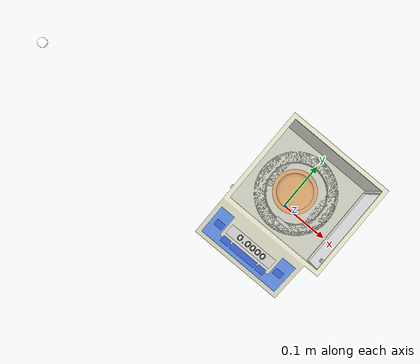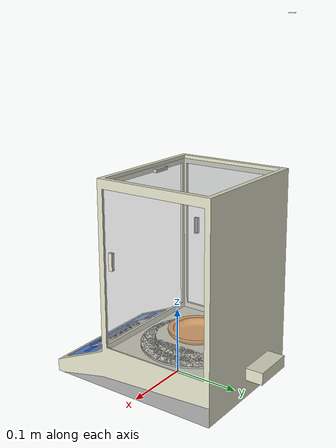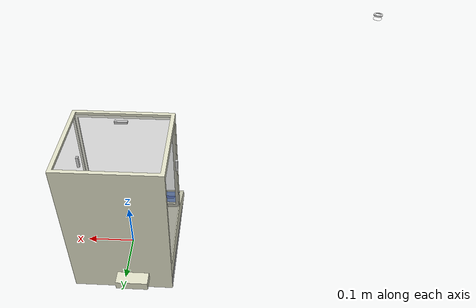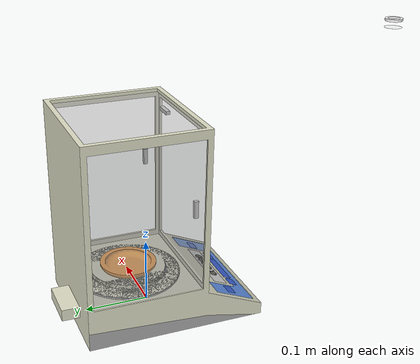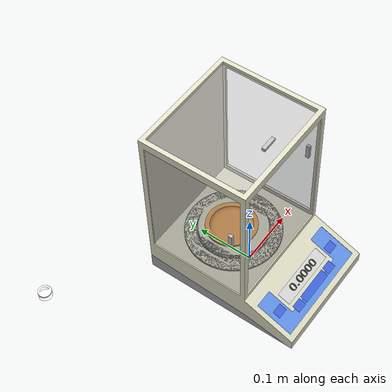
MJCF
<!-- Generated by tools/convert_dae.py from model.dae; size 0.210 x 0.299 x 0.311 m.
     Origin on the floor, centred in X and Y, +Z up. Visual meshes don't collide and carry no mass; one box stands in. -->
<mujoco model="balance">
  <asset>
    <mesh name="balance_00" file="part_00.obj" inertia="shell"/>
    <mesh name="balance_01" file="part_01.obj" inertia="shell"/>
    <mesh name="balance_02" file="part_02.obj" inertia="shell"/>
    <mesh name="balance_03" file="part_03.obj" inertia="shell"/>
    <mesh name="balance_04" file="part_04.obj" inertia="shell"/>
    <mesh name="balance_05" file="part_05.obj" inertia="shell"/>
    <mesh name="balance_06" file="part_06.obj" inertia="shell"/>
    <mesh name="balance_07" file="part_07.obj" inertia="shell"/>
    <mesh name="balance_08" file="part_08.obj" inertia="shell"/>
    <mesh name="balance_09" file="part_09.obj" inertia="shell"/>
    <mesh name="balance_10" file="part_10.obj" inertia="shell"/>
  </asset>
  <worldbody>
    <body name="balance">
      <geom type="mesh" mesh="balance_00" rgba="0.420 0.431 0.482 1.000" contype="0" conaffinity="0" density="0" group="1"/>  <!-- __Metal-floor_ -->
      <geom type="mesh" mesh="balance_01" rgba="0.863 0.863 0.863 1.000" contype="0" conaffinity="0" density="0" group="1"/>  <!-- __Gainsboro_ -->
      <geom type="mesh" mesh="balance_02" rgba="0.392 0.584 0.929 1.000" contype="0" conaffinity="0" density="0" group="1"/>  <!-- __CornflowerBlue_ -->
      <geom type="mesh" mesh="balance_03" rgba="0.255 0.412 0.882 1.000" contype="0" conaffinity="0" density="0" group="1"/>  <!-- __RoyalBlue_ -->
      <geom type="mesh" mesh="balance_04" rgba="0.227 0.227 0.227 1.000" contype="0" conaffinity="0" density="0" group="1"/>  <!-- Color_007 -->
      <geom type="mesh" mesh="balance_05" rgba="0.700 0.700 0.700 0.480" contype="0" conaffinity="0" density="0" group="1"/>  <!-- Translucent_Glass_Tinted -->
      <geom type="mesh" mesh="balance_06" rgba="0.667 0.667 0.667 1.000" contype="0" conaffinity="0" density="0" group="1"/>  <!-- Color_003 -->
      <geom type="mesh" mesh="balance_07" rgba="1.000 0.600 0.196 1.000" contype="0" conaffinity="0" density="0" group="1"/>  <!-- Color_C02 -->
      <geom type="mesh" mesh="balance_08" rgba="0.882 0.882 0.784 1.000" contype="0" conaffinity="0" density="0" group="1"/>  <!-- material -->
      <geom type="mesh" mesh="balance_09" rgba="1.000 1.000 1.000 1.000" contype="0" conaffinity="0" density="0" group="1"/>  <!-- Color_000 -->
      <geom type="mesh" mesh="balance_10" rgba="0.757 0.757 0.757 1.000" contype="0" conaffinity="0" density="0" group="1"/>  <!-- __CorrogateShiny_ -->
      <geom name="balance_collision" type="box" size="0.1050 0.1497 0.1555" pos="0 0 0.1555" mass="6" group="3" rgba=".5 .5 .5 .3"/>
    </body>
  </worldbody>
</mujoco>
